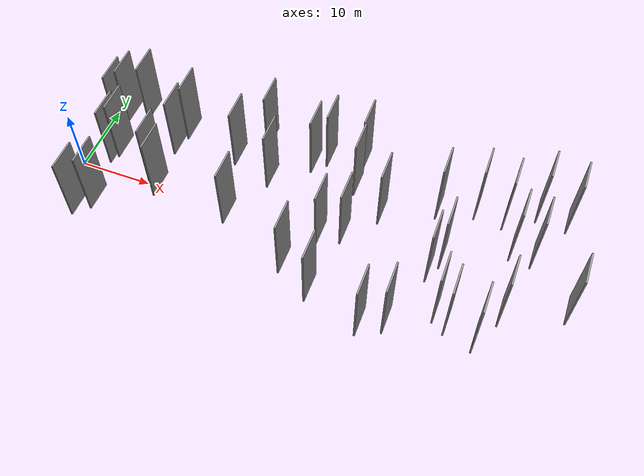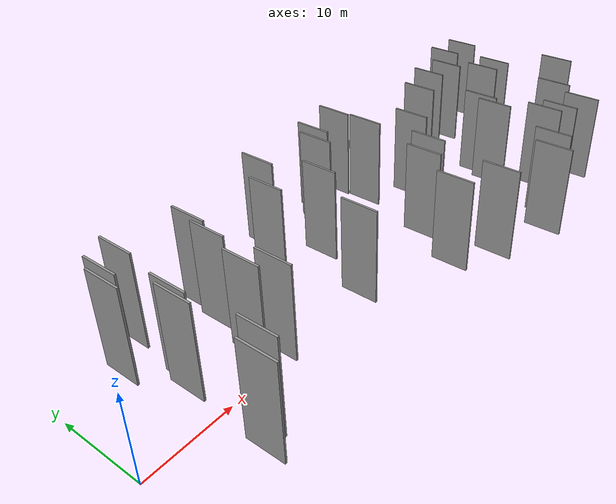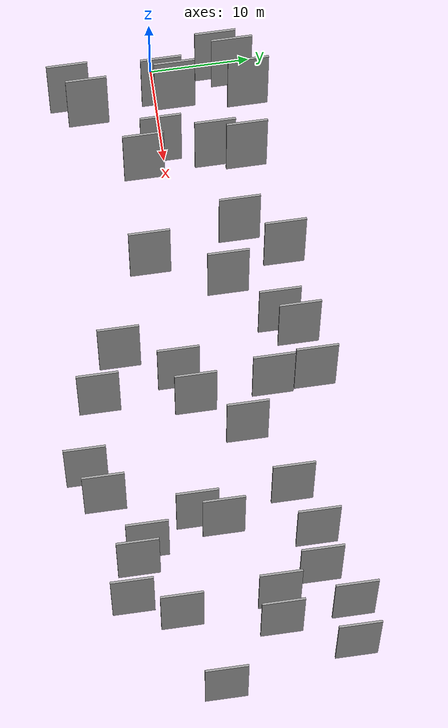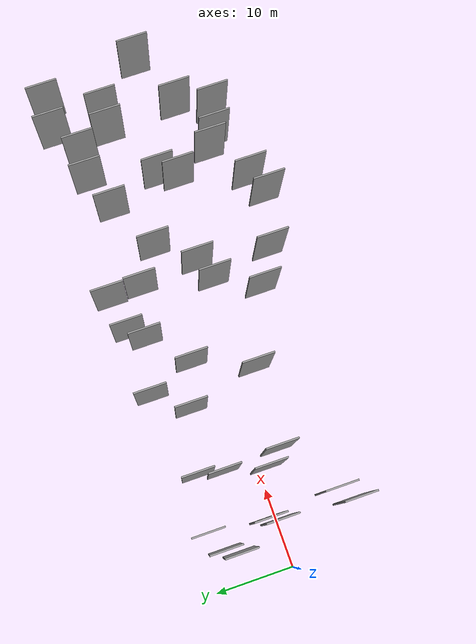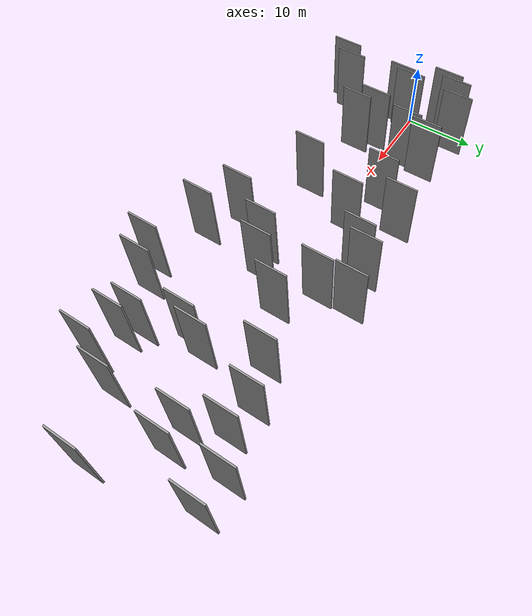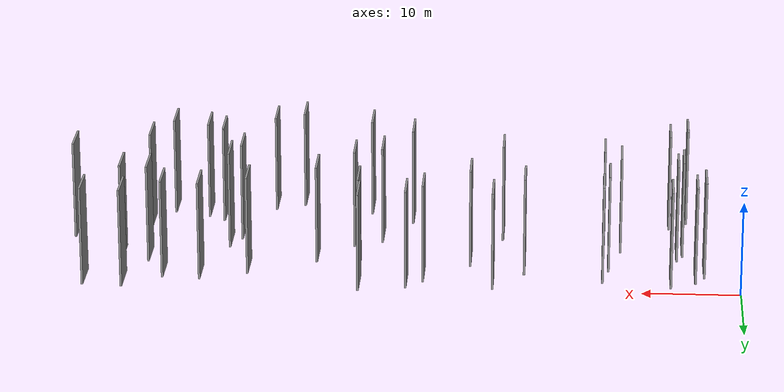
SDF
<sdf version="1.6">
 <world name="default">
  <scene>
   <sky><clouds><speed>12</speed></clouds></sky>
   <ambient>0.4 0.4 0.4 1</ambient>
   <background>0.7 0.7 0.7 1</background>
   <shadows>1</shadows>
  </scene>
  <gravity>0 0 -9.8066</gravity>
  <magnetic_field>6e-06 2.3e-05 -4.2e-05</magnetic_field>
  <physics default="0" name="default_physics" type="ode">
   <ode>
    <solver>
     <type>quick</type>
     <iters>10</iters>
     <sor>1.0</sor>
     <use_dynamic_moi_rescaling>0</use_dynamic_moi_rescaling>
    </solver>
    <constraints>
     <cfm>0</cfm>
     <erp>0.2</erp>
     <contact_max_correcting_vel>100</contact_max_correcting_vel>
     <contact_surface_layer>0.001</contact_surface_layer>
    </constraints>
   </ode>
   <max_step_size>0.004</max_step_size>
   <real_time_factor>1</real_time_factor>
   <real_time_update_rate>250</real_time_update_rate>
  </physics>
  <light name="sun" type="directional">
   <pose>0 0 10 0 0 0</pose>
   <diffuse>0.8 0.8 0.8 1</diffuse>
   <specular>0.2 0.2 0.2 1</specular>
   <attenuation>
    <range>1000</range>
    <constant>0.9</constant>
    <linear>0.01</linear>
    <quadratic>0.001</quadratic>
   </attenuation>
   <direction>-0.5 0.1 -0.9</direction>
  </light>
  <model name="grey_wall_1">
   <static>1</static>
   <pose>61.8722 4.0476 5.0 0.000000 0.000000 1.570796</pose>
   <link name="link">
    <pose>0 0 5.00 0 0 0</pose>
    <collision name="collision"><geometry><box><size>4.00 0.2 10.00</size></box></geometry></collision>
    <visual name="visual">
     <cast_shadows>0</cast_shadows>
     <geometry><box><size>4.00 0.2 10.00</size></box></geometry>
     <material>
      <script>
       <uri>model://grey_wall/materials/scripts</uri>
       <uri>model://grey_wall/materials/textures</uri>
       <name>vrc/grey_wall</name>
      </script>
     </material>
    </visual>
   </link>
  </model>
  <model name="grey_wall_2">
   <static>1</static>
   <pose>24.0952 -3.1645 5.0 0.000000 0.000000 1.570796</pose>
   <link name="link">
    <pose>0 0 5.00 0 0 0</pose>
    <collision name="collision"><geometry><box><size>4.00 0.2 10.00</size></box></geometry></collision>
    <visual name="visual">
     <cast_shadows>0</cast_shadows>
     <geometry><box><size>4.00 0.2 10.00</size></box></geometry>
     <material>
      <script>
       <uri>model://grey_wall/materials/scripts</uri>
       <uri>model://grey_wall/materials/textures</uri>
       <name>vrc/grey_wall</name>
      </script>
     </material>
    </visual>
   </link>
  </model>
  <model name="grey_wall_3">
   <static>1</static>
   <pose>33.2724 9.9596 5.0 0.000000 0.000000 1.570796</pose>
   <link name="link">
    <pose>0 0 5.00 0 0 0</pose>
    <collision name="collision"><geometry><box><size>4.00 0.2 10.00</size></box></geometry></collision>
    <visual name="visual">
     <cast_shadows>0</cast_shadows>
     <geometry><box><size>4.00 0.2 10.00</size></box></geometry>
     <material>
      <script>
       <uri>model://grey_wall/materials/scripts</uri>
       <uri>model://grey_wall/materials/textures</uri>
       <name>vrc/grey_wall</name>
      </script>
     </material>
    </visual>
   </link>
  </model>
  <model name="grey_wall_4">
   <static>1</static>
   <pose>49.0473 6.9587 5.0 0.000000 0.000000 1.570796</pose>
   <link name="link">
    <pose>0 0 5.00 0 0 0</pose>
    <collision name="collision"><geometry><box><size>4.00 0.2 10.00</size></box></geometry></collision>
    <visual name="visual">
     <cast_shadows>0</cast_shadows>
     <geometry><box><size>4.00 0.2 10.00</size></box></geometry>
     <material>
      <script>
       <uri>model://grey_wall/materials/scripts</uri>
       <uri>model://grey_wall/materials/textures</uri>
       <name>vrc/grey_wall</name>
      </script>
     </material>
    </visual>
   </link>
  </model>
  <model name="grey_wall_5">
   <static>1</static>
   <pose>47.6376 -10.6316 5.0 0.000000 0.000000 1.570796</pose>
   <link name="link">
    <pose>0 0 5.00 0 0 0</pose>
    <collision name="collision"><geometry><box><size>4.00 0.2 10.00</size></box></geometry></collision>
    <visual name="visual">
     <cast_shadows>0</cast_shadows>
     <geometry><box><size>4.00 0.2 10.00</size></box></geometry>
     <material>
      <script>
       <uri>model://grey_wall/materials/scripts</uri>
       <uri>model://grey_wall/materials/textures</uri>
       <name>vrc/grey_wall</name>
      </script>
     </material>
    </visual>
   </link>
  </model>
  <model name="grey_wall_6">
   <static>1</static>
   <pose>7.3256 -7.0540 5.0 0.000000 0.000000 1.570796</pose>
   <link name="link">
    <pose>0 0 5.00 0 0 0</pose>
    <collision name="collision"><geometry><box><size>4.00 0.2 10.00</size></box></geometry></collision>
    <visual name="visual">
     <cast_shadows>0</cast_shadows>
     <geometry><box><size>4.00 0.2 10.00</size></box></geometry>
     <material>
      <script>
       <uri>model://grey_wall/materials/scripts</uri>
       <uri>model://grey_wall/materials/textures</uri>
       <name>vrc/grey_wall</name>
      </script>
     </material>
    </visual>
   </link>
  </model>
  <model name="grey_wall_7">
   <static>1</static>
   <pose>37.7008 -9.8740 5.0 0.000000 0.000000 1.570796</pose>
   <link name="link">
    <pose>0 0 5.00 0 0 0</pose>
    <collision name="collision"><geometry><box><size>4.00 0.2 10.00</size></box></geometry></collision>
    <visual name="visual">
     <cast_shadows>0</cast_shadows>
     <geometry><box><size>4.00 0.2 10.00</size></box></geometry>
     <material>
      <script>
       <uri>model://grey_wall/materials/scripts</uri>
       <uri>model://grey_wall/materials/textures</uri>
       <name>vrc/grey_wall</name>
      </script>
     </material>
    </visual>
   </link>
  </model>
  <model name="grey_wall_8">
   <static>1</static>
   <pose>42.4209 3.6427 5.0 0.000000 0.000000 1.570796</pose>
   <link name="link">
    <pose>0 0 5.00 0 0 0</pose>
    <collision name="collision"><geometry><box><size>4.00 0.2 10.00</size></box></geometry></collision>
    <visual name="visual">
     <cast_shadows>0</cast_shadows>
     <geometry><box><size>4.00 0.2 10.00</size></box></geometry>
     <material>
      <script>
       <uri>model://grey_wall/materials/scripts</uri>
       <uri>model://grey_wall/materials/textures</uri>
       <name>vrc/grey_wall</name>
      </script>
     </material>
    </visual>
   </link>
  </model>
  <model name="grey_wall_9">
   <static>1</static>
   <pose>27.1511 4.0003 5.0 0.000000 0.000000 1.570796</pose>
   <link name="link">
    <pose>0 0 5.00 0 0 0</pose>
    <collision name="collision"><geometry><box><size>4.00 0.2 10.00</size></box></geometry></collision>
    <visual name="visual">
     <cast_shadows>0</cast_shadows>
     <geometry><box><size>4.00 0.2 10.00</size></box></geometry>
     <material>
      <script>
       <uri>model://grey_wall/materials/scripts</uri>
       <uri>model://grey_wall/materials/textures</uri>
       <name>vrc/grey_wall</name>
      </script>
     </material>
    </visual>
   </link>
  </model>
  <model name="grey_wall_10">
   <static>1</static>
   <pose>31.6519 8.2826 5.0 0.000000 0.000000 1.570796</pose>
   <link name="link">
    <pose>0 0 5.00 0 0 0</pose>
    <collision name="collision"><geometry><box><size>4.00 0.2 10.00</size></box></geometry></collision>
    <visual name="visual">
     <cast_shadows>0</cast_shadows>
     <geometry><box><size>4.00 0.2 10.00</size></box></geometry>
     <material>
      <script>
       <uri>model://grey_wall/materials/scripts</uri>
       <uri>model://grey_wall/materials/textures</uri>
       <name>vrc/grey_wall</name>
      </script>
     </material>
    </visual>
   </link>
  </model>
  <model name="grey_wall_11">
   <static>1</static>
   <pose>4.0250 6.0023 5.0 0.000000 0.000000 1.570796</pose>
   <link name="link">
    <pose>0 0 5.00 0 0 0</pose>
    <collision name="collision"><geometry><box><size>4.00 0.2 10.00</size></box></geometry></collision>
    <visual name="visual">
     <cast_shadows>0</cast_shadows>
     <geometry><box><size>4.00 0.2 10.00</size></box></geometry>
     <material>
      <script>
       <uri>model://grey_wall/materials/scripts</uri>
       <uri>model://grey_wall/materials/textures</uri>
       <name>vrc/grey_wall</name>
      </script>
     </material>
    </visual>
   </link>
  </model>
  <model name="grey_wall_12">
   <static>1</static>
   <pose>57.9385 -9.3177 5.0 0.000000 0.000000 1.570796</pose>
   <link name="link">
    <pose>0 0 5.00 0 0 0</pose>
    <collision name="collision"><geometry><box><size>4.00 0.2 10.00</size></box></geometry></collision>
    <visual name="visual">
     <cast_shadows>0</cast_shadows>
     <geometry><box><size>4.00 0.2 10.00</size></box></geometry>
     <material>
      <script>
       <uri>model://grey_wall/materials/scripts</uri>
       <uri>model://grey_wall/materials/textures</uri>
       <name>vrc/grey_wall</name>
      </script>
     </material>
    </visual>
   </link>
  </model>
  <model name="grey_wall_13">
   <static>1</static>
   <pose>67.3275 -1.9392 5.0 0.000000 0.000000 1.570796</pose>
   <link name="link">
    <pose>0 0 5.00 0 0 0</pose>
    <collision name="collision"><geometry><box><size>4.00 0.2 10.00</size></box></geometry></collision>
    <visual name="visual">
     <cast_shadows>0</cast_shadows>
     <geometry><box><size>4.00 0.2 10.00</size></box></geometry>
     <material>
      <script>
       <uri>model://grey_wall/materials/scripts</uri>
       <uri>model://grey_wall/materials/textures</uri>
       <name>vrc/grey_wall</name>
      </script>
     </material>
    </visual>
   </link>
  </model>
  <model name="grey_wall_14">
   <static>1</static>
   <pose>38.9414 -0.7922 5.0 0.000000 0.000000 1.570796</pose>
   <link name="link">
    <pose>0 0 5.00 0 0 0</pose>
    <collision name="collision"><geometry><box><size>4.00 0.2 10.00</size></box></geometry></collision>
    <visual name="visual">
     <cast_shadows>0</cast_shadows>
     <geometry><box><size>4.00 0.2 10.00</size></box></geometry>
     <material>
      <script>
       <uri>model://grey_wall/materials/scripts</uri>
       <uri>model://grey_wall/materials/textures</uri>
       <name>vrc/grey_wall</name>
      </script>
     </material>
    </visual>
   </link>
  </model>
  <model name="grey_wall_15">
   <static>1</static>
   <pose>21.7613 5.8761 5.0 0.000000 0.000000 1.570796</pose>
   <link name="link">
    <pose>0 0 5.00 0 0 0</pose>
    <collision name="collision"><geometry><box><size>4.00 0.2 10.00</size></box></geometry></collision>
    <visual name="visual">
     <cast_shadows>0</cast_shadows>
     <geometry><box><size>4.00 0.2 10.00</size></box></geometry>
     <material>
      <script>
       <uri>model://grey_wall/materials/scripts</uri>
       <uri>model://grey_wall/materials/textures</uri>
       <name>vrc/grey_wall</name>
      </script>
     </material>
    </visual>
   </link>
  </model>
  <model name="grey_wall_16">
   <static>1</static>
   <pose>6.1006 0.4176 5.0 0.000000 0.000000 1.570796</pose>
   <link name="link">
    <pose>0 0 5.00 0 0 0</pose>
    <collision name="collision"><geometry><box><size>4.00 0.2 10.00</size></box></geometry></collision>
    <visual name="visual">
     <cast_shadows>0</cast_shadows>
     <geometry><box><size>4.00 0.2 10.00</size></box></geometry>
     <material>
      <script>
       <uri>model://grey_wall/materials/scripts</uri>
       <uri>model://grey_wall/materials/textures</uri>
       <name>vrc/grey_wall</name>
      </script>
     </material>
    </visual>
   </link>
  </model>
  <model name="grey_wall_17">
   <static>1</static>
   <pose>14.0295 7.7053 5.0 0.000000 0.000000 1.570796</pose>
   <link name="link">
    <pose>0 0 5.00 0 0 0</pose>
    <collision name="collision"><geometry><box><size>4.00 0.2 10.00</size></box></geometry></collision>
    <visual name="visual">
     <cast_shadows>0</cast_shadows>
     <geometry><box><size>4.00 0.2 10.00</size></box></geometry>
     <material>
      <script>
       <uri>model://grey_wall/materials/scripts</uri>
       <uri>model://grey_wall/materials/textures</uri>
       <name>vrc/grey_wall</name>
      </script>
     </material>
    </visual>
   </link>
  </model>
  <model name="grey_wall_18">
   <static>1</static>
   <pose>54.3517 -8.3169 5.0 0.000000 0.000000 1.570796</pose>
   <link name="link">
    <pose>0 0 5.00 0 0 0</pose>
    <collision name="collision"><geometry><box><size>4.00 0.2 10.00</size></box></geometry></collision>
    <visual name="visual">
     <cast_shadows>0</cast_shadows>
     <geometry><box><size>4.00 0.2 10.00</size></box></geometry>
     <material>
      <script>
       <uri>model://grey_wall/materials/scripts</uri>
       <uri>model://grey_wall/materials/textures</uri>
       <name>vrc/grey_wall</name>
      </script>
     </material>
    </visual>
   </link>
  </model>
  <model name="grey_wall_19">
   <static>1</static>
   <pose>59.9371 -4.9966 5.0 0.000000 0.000000 1.570796</pose>
   <link name="link">
    <pose>0 0 5.00 0 0 0</pose>
    <collision name="collision"><geometry><box><size>4.00 0.2 10.00</size></box></geometry></collision>
    <visual name="visual">
     <cast_shadows>0</cast_shadows>
     <geometry><box><size>4.00 0.2 10.00</size></box></geometry>
     <material>
      <script>
       <uri>model://grey_wall/materials/scripts</uri>
       <uri>model://grey_wall/materials/textures</uri>
       <name>vrc/grey_wall</name>
      </script>
     </material>
    </visual>
   </link>
  </model>
  <model name="grey_wall_20">
   <static>1</static>
   <pose>51.4424 0.0903 5.0 0.000000 0.000000 1.570796</pose>
   <link name="link">
    <pose>0 0 5.00 0 0 0</pose>
    <collision name="collision"><geometry><box><size>4.00 0.2 10.00</size></box></geometry></collision>
    <visual name="visual">
     <cast_shadows>0</cast_shadows>
     <geometry><box><size>4.00 0.2 10.00</size></box></geometry>
     <material>
      <script>
       <uri>model://grey_wall/materials/scripts</uri>
       <uri>model://grey_wall/materials/textures</uri>
       <name>vrc/grey_wall</name>
      </script>
     </material>
    </visual>
   </link>
  </model>
  <model name="grey_wall_21">
   <static>1</static>
   <pose>52.7272 -7.2309 5.0 0.000000 0.000000 1.570796</pose>
   <link name="link">
    <pose>0 0 5.00 0 0 0</pose>
    <collision name="collision"><geometry><box><size>4.00 0.2 10.00</size></box></geometry></collision>
    <visual name="visual">
     <cast_shadows>0</cast_shadows>
     <geometry><box><size>4.00 0.2 10.00</size></box></geometry>
     <material>
      <script>
       <uri>model://grey_wall/materials/scripts</uri>
       <uri>model://grey_wall/materials/textures</uri>
       <name>vrc/grey_wall</name>
      </script>
     </material>
    </visual>
   </link>
  </model>
  <model name="grey_wall_22">
   <static>1</static>
   <pose>57.3311 8.3574 5.0 0.000000 0.000000 1.570796</pose>
   <link name="link">
    <pose>0 0 5.00 0 0 0</pose>
    <collision name="collision"><geometry><box><size>4.00 0.2 10.00</size></box></geometry></collision>
    <visual name="visual">
     <cast_shadows>0</cast_shadows>
     <geometry><box><size>4.00 0.2 10.00</size></box></geometry>
     <material>
      <script>
       <uri>model://grey_wall/materials/scripts</uri>
       <uri>model://grey_wall/materials/textures</uri>
       <name>vrc/grey_wall</name>
      </script>
     </material>
    </visual>
   </link>
  </model>
  <model name="grey_wall_23">
   <static>1</static>
   <pose>13.4441 4.6851 5.0 0.000000 0.000000 1.570796</pose>
   <link name="link">
    <pose>0 0 5.00 0 0 0</pose>
    <collision name="collision"><geometry><box><size>4.00 0.2 10.00</size></box></geometry></collision>
    <visual name="visual">
     <cast_shadows>0</cast_shadows>
     <geometry><box><size>4.00 0.2 10.00</size></box></geometry>
     <material>
      <script>
       <uri>model://grey_wall/materials/scripts</uri>
       <uri>model://grey_wall/materials/textures</uri>
       <name>vrc/grey_wall</name>
      </script>
     </material>
    </visual>
   </link>
  </model>
  <model name="grey_wall_24">
   <static>1</static>
   <pose>44.7818 -11.9892 5.0 0.000000 0.000000 1.570796</pose>
   <link name="link">
    <pose>0 0 5.00 0 0 0</pose>
    <collision name="collision"><geometry><box><size>4.00 0.2 10.00</size></box></geometry></collision>
    <visual name="visual">
     <cast_shadows>0</cast_shadows>
     <geometry><box><size>4.00 0.2 10.00</size></box></geometry>
     <material>
      <script>
       <uri>model://grey_wall/materials/scripts</uri>
       <uri>model://grey_wall/materials/textures</uri>
       <name>vrc/grey_wall</name>
      </script>
     </material>
    </visual>
   </link>
  </model>
  <model name="grey_wall_25">
   <static>1</static>
   <pose>36.1950 -2.0576 5.0 0.000000 0.000000 1.570796</pose>
   <link name="link">
    <pose>0 0 5.00 0 0 0</pose>
    <collision name="collision"><geometry><box><size>4.00 0.2 10.00</size></box></geometry></collision>
    <visual name="visual">
     <cast_shadows>0</cast_shadows>
     <geometry><box><size>4.00 0.2 10.00</size></box></geometry>
     <material>
      <script>
       <uri>model://grey_wall/materials/scripts</uri>
       <uri>model://grey_wall/materials/textures</uri>
       <name>vrc/grey_wall</name>
      </script>
     </material>
    </visual>
   </link>
  </model>
  <model name="grey_wall_26">
   <static>1</static>
   <pose>6.6715 1.6446 5.0 0.000000 0.000000 1.570796</pose>
   <link name="link">
    <pose>0 0 5.00 0 0 0</pose>
    <collision name="collision"><geometry><box><size>4.00 0.2 10.00</size></box></geometry></collision>
    <visual name="visual">
     <cast_shadows>0</cast_shadows>
     <geometry><box><size>4.00 0.2 10.00</size></box></geometry>
     <material>
      <script>
       <uri>model://grey_wall/materials/scripts</uri>
       <uri>model://grey_wall/materials/textures</uri>
       <name>vrc/grey_wall</name>
      </script>
     </material>
    </visual>
   </link>
  </model>
  <model name="grey_wall_27">
   <static>1</static>
   <pose>61.0809 10.9230 5.0 0.000000 0.000000 1.570796</pose>
   <link name="link">
    <pose>0 0 5.00 0 0 0</pose>
    <collision name="collision"><geometry><box><size>4.00 0.2 10.00</size></box></geometry></collision>
    <visual name="visual">
     <cast_shadows>0</cast_shadows>
     <geometry><box><size>4.00 0.2 10.00</size></box></geometry>
     <material>
      <script>
       <uri>model://grey_wall/materials/scripts</uri>
       <uri>model://grey_wall/materials/textures</uri>
       <name>vrc/grey_wall</name>
      </script>
     </material>
    </visual>
   </link>
  </model>
  <model name="grey_wall_28">
   <static>1</static>
   <pose>38.1163 6.7494 5.0 0.000000 0.000000 1.570796</pose>
   <link name="link">
    <pose>0 0 5.00 0 0 0</pose>
    <collision name="collision"><geometry><box><size>4.00 0.2 10.00</size></box></geometry></collision>
    <visual name="visual">
     <cast_shadows>0</cast_shadows>
     <geometry><box><size>4.00 0.2 10.00</size></box></geometry>
     <material>
      <script>
       <uri>model://grey_wall/materials/scripts</uri>
       <uri>model://grey_wall/materials/textures</uri>
       <name>vrc/grey_wall</name>
      </script>
     </material>
    </visual>
   </link>
  </model>
  <model name="grey_wall_29">
   <static>1</static>
   <pose>5.5426 -8.6932 5.0 0.000000 0.000000 1.570796</pose>
   <link name="link">
    <pose>0 0 5.00 0 0 0</pose>
    <collision name="collision"><geometry><box><size>4.00 0.2 10.00</size></box></geometry></collision>
    <visual name="visual">
     <cast_shadows>0</cast_shadows>
     <geometry><box><size>4.00 0.2 10.00</size></box></geometry>
     <material>
      <script>
       <uri>model://grey_wall/materials/scripts</uri>
       <uri>model://grey_wall/materials/textures</uri>
       <name>vrc/grey_wall</name>
      </script>
     </material>
    </visual>
   </link>
  </model>
  <model name="grey_wall_30">
   <static>1</static>
   <pose>4.9219 7.5120 5.0 0.000000 0.000000 1.570796</pose>
   <link name="link">
    <pose>0 0 5.00 0 0 0</pose>
    <collision name="collision"><geometry><box><size>4.00 0.2 10.00</size></box></geometry></collision>
    <visual name="visual">
     <cast_shadows>0</cast_shadows>
     <geometry><box><size>4.00 0.2 10.00</size></box></geometry>
     <material>
      <script>
       <uri>model://grey_wall/materials/scripts</uri>
       <uri>model://grey_wall/materials/textures</uri>
       <name>vrc/grey_wall</name>
      </script>
     </material>
    </visual>
   </link>
  </model>
  <model name="grey_wall_31">
   <static>1</static>
   <pose>24.7826 9.8394 5.0 0.000000 0.000000 1.570796</pose>
   <link name="link">
    <pose>0 0 5.00 0 0 0</pose>
    <collision name="collision"><geometry><box><size>4.00 0.2 10.00</size></box></geometry></collision>
    <visual name="visual">
     <cast_shadows>0</cast_shadows>
     <geometry><box><size>4.00 0.2 10.00</size></box></geometry>
     <material>
      <script>
       <uri>model://grey_wall/materials/scripts</uri>
       <uri>model://grey_wall/materials/textures</uri>
       <name>vrc/grey_wall</name>
      </script>
     </material>
    </visual>
   </link>
  </model>
  <model name="grey_wall_32">
   <static>1</static>
   <pose>64.9520 10.6086 5.0 0.000000 0.000000 1.570796</pose>
   <link name="link">
    <pose>0 0 5.00 0 0 0</pose>
    <collision name="collision"><geometry><box><size>4.00 0.2 10.00</size></box></geometry></collision>
    <visual name="visual">
     <cast_shadows>0</cast_shadows>
     <geometry><box><size>4.00 0.2 10.00</size></box></geometry>
     <material>
      <script>
       <uri>model://grey_wall/materials/scripts</uri>
       <uri>model://grey_wall/materials/textures</uri>
       <name>vrc/grey_wall</name>
      </script>
     </material>
    </visual>
   </link>
  </model>
  <model name="grey_wall_33">
   <static>1</static>
   <pose>33.3776 -7.3696 5.0 0.000000 0.000000 1.570796</pose>
   <link name="link">
    <pose>0 0 5.00 0 0 0</pose>
    <collision name="collision"><geometry><box><size>4.00 0.2 10.00</size></box></geometry></collision>
    <visual name="visual">
     <cast_shadows>0</cast_shadows>
     <geometry><box><size>4.00 0.2 10.00</size></box></geometry>
     <material>
      <script>
       <uri>model://grey_wall/materials/scripts</uri>
       <uri>model://grey_wall/materials/textures</uri>
       <name>vrc/grey_wall</name>
      </script>
     </material>
    </visual>
   </link>
  </model>
  <model name="grey_wall_34">
   <static>1</static>
   <pose>12.2626 -0.4662 5.0 0.000000 0.000000 1.570796</pose>
   <link name="link">
    <pose>0 0 5.00 0 0 0</pose>
    <collision name="collision"><geometry><box><size>4.00 0.2 10.00</size></box></geometry></collision>
    <visual name="visual">
     <cast_shadows>0</cast_shadows>
     <geometry><box><size>4.00 0.2 10.00</size></box></geometry>
     <material>
      <script>
       <uri>model://grey_wall/materials/scripts</uri>
       <uri>model://grey_wall/materials/textures</uri>
       <name>vrc/grey_wall</name>
      </script>
     </material>
    </visual>
   </link>
  </model>
  <model name="grey_wall_35">
   <static>1</static>
   <pose>7.3493 8.7970 5.0 0.000000 0.000000 1.570796</pose>
   <link name="link">
    <pose>0 0 5.00 0 0 0</pose>
    <collision name="collision"><geometry><box><size>4.00 0.2 10.00</size></box></geometry></collision>
    <visual name="visual">
     <cast_shadows>0</cast_shadows>
     <geometry><box><size>4.00 0.2 10.00</size></box></geometry>
     <material>
      <script>
       <uri>model://grey_wall/materials/scripts</uri>
       <uri>model://grey_wall/materials/textures</uri>
       <name>vrc/grey_wall</name>
      </script>
     </material>
    </visual>
   </link>
  </model>
  <model name="grey_wall_36">
   <static>1</static>
   <pose>13.9228 -2.3723 5.0 0.000000 0.000000 1.570796</pose>
   <link name="link">
    <pose>0 0 5.00 0 0 0</pose>
    <collision name="collision"><geometry><box><size>4.00 0.2 10.00</size></box></geometry></collision>
    <visual name="visual">
     <cast_shadows>0</cast_shadows>
     <geometry><box><size>4.00 0.2 10.00</size></box></geometry>
     <material>
      <script>
       <uri>model://grey_wall/materials/scripts</uri>
       <uri>model://grey_wall/materials/textures</uri>
       <name>vrc/grey_wall</name>
      </script>
     </material>
    </visual>
   </link>
  </model>
  <model name="grey_wall_37">
   <static>1</static>
   <pose>50.3925 -2.2421 5.0 0.000000 0.000000 1.570796</pose>
   <link name="link">
    <pose>0 0 5.00 0 0 0</pose>
    <collision name="collision"><geometry><box><size>4.00 0.2 10.00</size></box></geometry></collision>
    <visual name="visual">
     <cast_shadows>0</cast_shadows>
     <geometry><box><size>4.00 0.2 10.00</size></box></geometry>
     <material>
      <script>
       <uri>model://grey_wall/materials/scripts</uri>
       <uri>model://grey_wall/materials/textures</uri>
       <name>vrc/grey_wall</name>
      </script>
     </material>
    </visual>
   </link>
  </model>
  <model name="grey_wall_38">
   <static>1</static>
   <pose>53.6442 8.6141 5.0 0.000000 0.000000 1.570796</pose>
   <link name="link">
    <pose>0 0 5.00 0 0 0</pose>
    <collision name="collision"><geometry><box><size>4.00 0.2 10.00</size></box></geometry></collision>
    <visual name="visual">
     <cast_shadows>0</cast_shadows>
     <geometry><box><size>4.00 0.2 10.00</size></box></geometry>
     <material>
      <script>
       <uri>model://grey_wall/materials/scripts</uri>
       <uri>model://grey_wall/materials/textures</uri>
       <name>vrc/grey_wall</name>
      </script>
     </material>
    </visual>
   </link>
  </model>
  <model name="grey_wall_39">
   <static>1</static>
   <pose>59.1828 4.2302 5.0 0.000000 0.000000 1.570796</pose>
   <link name="link">
    <pose>0 0 5.00 0 0 0</pose>
    <collision name="collision"><geometry><box><size>4.00 0.2 10.00</size></box></geometry></collision>
    <visual name="visual">
     <cast_shadows>0</cast_shadows>
     <geometry><box><size>4.00 0.2 10.00</size></box></geometry>
     <material>
      <script>
       <uri>model://grey_wall/materials/scripts</uri>
       <uri>model://grey_wall/materials/textures</uri>
       <name>vrc/grey_wall</name>
      </script>
     </material>
    </visual>
   </link>
  </model>
  <model name="grey_wall_40">
   <static>1</static>
   <pose>37.8838 10.8541 5.0 0.000000 0.000000 1.570796</pose>
   <link name="link">
    <pose>0 0 5.00 0 0 0</pose>
    <collision name="collision"><geometry><box><size>4.00 0.2 10.00</size></box></geometry></collision>
    <visual name="visual">
     <cast_shadows>0</cast_shadows>
     <geometry><box><size>4.00 0.2 10.00</size></box></geometry>
     <material>
      <script>
       <uri>model://grey_wall/materials/scripts</uri>
       <uri>model://grey_wall/materials/textures</uri>
       <name>vrc/grey_wall</name>
      </script>
     </material>
    </visual>
   </link>
  </model>
 </world>
</sdf>
